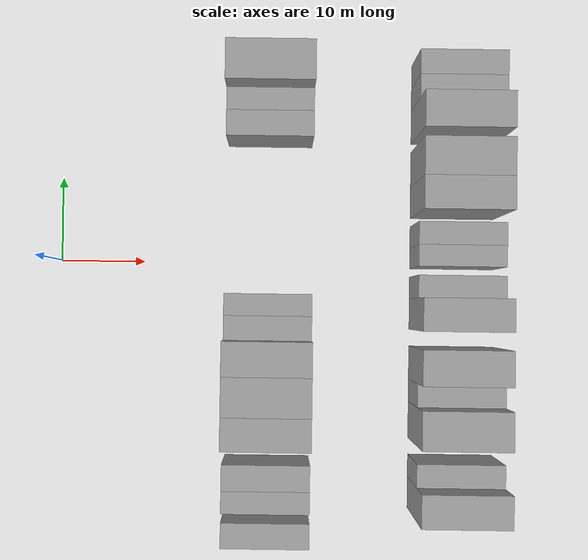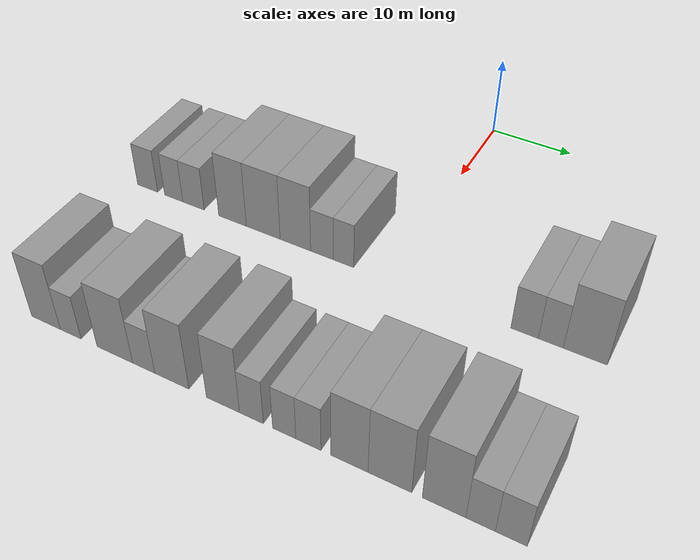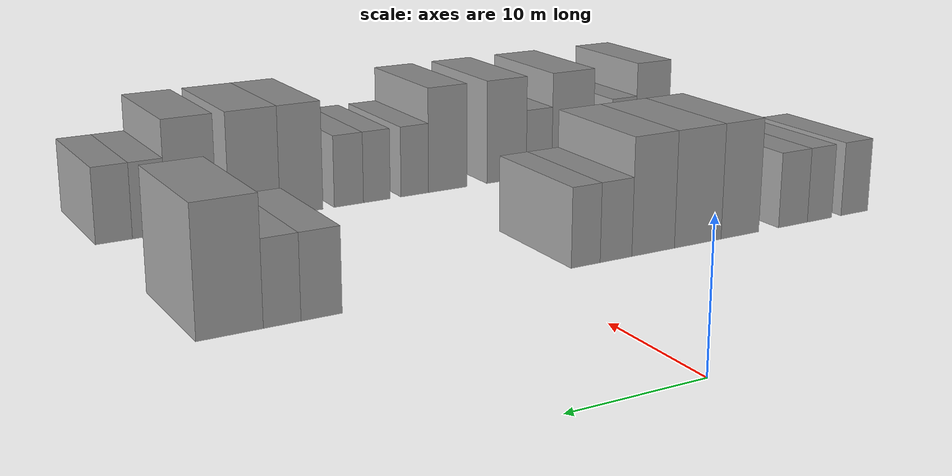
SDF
<sdf version="1.6">
 <world name="default">
  <model name="building_44">
   <static>1</static>
   <pose>25.0000 -31.0404 0 0.000000 0.000000 0.000000</pose>
   <link name="link">
    <pose>0 0 3.00 0 0 0</pose>
    <collision name="collision"><geometry><box><size>10.0000 2.8728 6.0000</size></box></geometry></collision>
    <visual name="visual">
     <cast_shadows>0</cast_shadows>
     <geometry><box><size>10.0000 2.8728 6.0000</size></box></geometry>
     <material>
      <script>
       <uri>model://grey_wall/materials/scripts</uri>
       <uri>model://grey_wall/materials/textures</uri>
       <name>vrc/grey_wall</name>
      </script>
     </material>
    </visual>
   </link>
  </model>
  <model name="building_45">
   <static>1</static>
   <pose>25.0000 -27.3285 0 0.000000 0.000000 0.000000</pose>
   <link name="link">
    <pose>0 0 3.00 0 0 0</pose>
    <collision name="collision"><geometry><box><size>10.0000 2.5510 6.0000</size></box></geometry></collision>
    <visual name="visual">
     <cast_shadows>0</cast_shadows>
     <geometry><box><size>10.0000 2.5510 6.0000</size></box></geometry>
     <material>
      <script>
       <uri>model://grey_wall/materials/scripts</uri>
       <uri>model://grey_wall/materials/textures</uri>
       <name>vrc/grey_wall</name>
      </script>
     </material>
    </visual>
   </link>
  </model>
  <model name="building_46">
   <static>1</static>
   <pose>25.0000 -24.5753 0 0.000000 0.000000 0.000000</pose>
   <link name="link">
    <pose>0 0 3.00 0 0 0</pose>
    <collision name="collision"><geometry><box><size>10.0000 2.9554 6.0000</size></box></geometry></collision>
    <visual name="visual">
     <cast_shadows>0</cast_shadows>
     <geometry><box><size>10.0000 2.9554 6.0000</size></box></geometry>
     <material>
      <script>
       <uri>model://grey_wall/materials/scripts</uri>
       <uri>model://grey_wall/materials/textures</uri>
       <name>vrc/grey_wall</name>
      </script>
     </material>
    </visual>
   </link>
  </model>
  <model name="building_47">
   <static>1</static>
   <pose>25.0000 -19.2505 0 0.000000 0.000000 0.000000</pose>
   <link name="link">
    <pose>0 0 4.50 0 0 0</pose>
    <collision name="collision"><geometry><box><size>10.0000 3.6943 9.0000</size></box></geometry></collision>
    <visual name="visual">
     <cast_shadows>0</cast_shadows>
     <geometry><box><size>10.0000 3.6943 9.0000</size></box></geometry>
     <material>
      <script>
       <uri>model://grey_wall/materials/scripts</uri>
       <uri>model://grey_wall/materials/textures</uri>
       <name>vrc/grey_wall</name>
      </script>
     </material>
    </visual>
   </link>
  </model>
  <model name="building_48">
   <static>1</static>
   <pose>25.0000 -15.1972 0 0.000000 0.000000 0.000000</pose>
   <link name="link">
    <pose>0 0 4.50 0 0 0</pose>
    <collision name="collision"><geometry><box><size>10.0000 4.4121 9.0000</size></box></geometry></collision>
    <visual name="visual">
     <cast_shadows>0</cast_shadows>
     <geometry><box><size>10.0000 4.4121 9.0000</size></box></geometry>
     <material>
      <script>
       <uri>model://grey_wall/materials/scripts</uri>
       <uri>model://grey_wall/materials/textures</uri>
       <name>vrc/grey_wall</name>
      </script>
     </material>
    </visual>
   </link>
  </model>
  <model name="building_49">
   <static>1</static>
   <pose>25.0000 -11.0496 0 0.000000 0.000000 0.000000</pose>
   <link name="link">
    <pose>0 0 4.50 0 0 0</pose>
    <collision name="collision"><geometry><box><size>10.0000 3.8831 9.0000</size></box></geometry></collision>
    <visual name="visual">
     <cast_shadows>0</cast_shadows>
     <geometry><box><size>10.0000 3.8831 9.0000</size></box></geometry>
     <material>
      <script>
       <uri>model://grey_wall/materials/scripts</uri>
       <uri>model://grey_wall/materials/textures</uri>
       <name>vrc/grey_wall</name>
      </script>
     </material>
    </visual>
   </link>
  </model>
  <model name="building_50">
   <static>1</static>
   <pose>25.0000 -7.7061 0 0.000000 0.000000 0.000000</pose>
   <link name="link">
    <pose>0 0 3.00 0 0 0</pose>
    <collision name="collision"><geometry><box><size>10.0000 2.8038 6.0000</size></box></geometry></collision>
    <visual name="visual">
     <cast_shadows>0</cast_shadows>
     <geometry><box><size>10.0000 2.8038 6.0000</size></box></geometry>
     <material>
      <script>
       <uri>model://grey_wall/materials/scripts</uri>
       <uri>model://grey_wall/materials/textures</uri>
       <name>vrc/grey_wall</name>
      </script>
     </material>
    </visual>
   </link>
  </model>
  <model name="building_51">
   <static>1</static>
   <pose>25.0000 -5.0564 0 0.000000 0.000000 0.000000</pose>
   <link name="link">
    <pose>0 0 3.00 0 0 0</pose>
    <collision name="collision"><geometry><box><size>10.0000 2.4957 6.0000</size></box></geometry></collision>
    <visual name="visual">
     <cast_shadows>0</cast_shadows>
     <geometry><box><size>10.0000 2.4957 6.0000</size></box></geometry>
     <material>
      <script>
       <uri>model://grey_wall/materials/scripts</uri>
       <uri>model://grey_wall/materials/textures</uri>
       <name>vrc/grey_wall</name>
      </script>
     </material>
    </visual>
   </link>
  </model>
  <model name="building_52">
   <static>1</static>
   <pose>25.0000 15.5653 0 0.000000 0.000000 0.000000</pose>
   <link name="link">
    <pose>0 0 3.00 0 0 0</pose>
    <collision name="collision"><geometry><box><size>10.0000 2.9159 6.0000</size></box></geometry></collision>
    <visual name="visual">
     <cast_shadows>0</cast_shadows>
     <geometry><box><size>10.0000 2.9159 6.0000</size></box></geometry>
     <material>
      <script>
       <uri>model://grey_wall/materials/scripts</uri>
       <uri>model://grey_wall/materials/textures</uri>
       <name>vrc/grey_wall</name>
      </script>
     </material>
    </visual>
   </link>
  </model>
  <model name="building_53">
   <static>1</static>
   <pose>25.0000 18.3170 0 0.000000 0.000000 0.000000</pose>
   <link name="link">
    <pose>0 0 3.00 0 0 0</pose>
    <collision name="collision"><geometry><box><size>10.0000 2.5877 6.0000</size></box></geometry></collision>
    <visual name="visual">
     <cast_shadows>0</cast_shadows>
     <geometry><box><size>10.0000 2.5877 6.0000</size></box></geometry>
     <material>
      <script>
       <uri>model://grey_wall/materials/scripts</uri>
       <uri>model://grey_wall/materials/textures</uri>
       <name>vrc/grey_wall</name>
      </script>
     </material>
    </visual>
   </link>
  </model>
  <model name="building_54">
   <static>1</static>
   <pose>25.0000 21.8488 0 0.000000 0.000000 0.000000</pose>
   <link name="link">
    <pose>0 0 4.50 0 0 0</pose>
    <collision name="collision"><geometry><box><size>10.0000 4.4759 9.0000</size></box></geometry></collision>
    <visual name="visual">
     <cast_shadows>0</cast_shadows>
     <geometry><box><size>10.0000 4.4759 9.0000</size></box></geometry>
     <material>
      <script>
       <uri>model://grey_wall/materials/scripts</uri>
       <uri>model://grey_wall/materials/textures</uri>
       <name>vrc/grey_wall</name>
      </script>
     </material>
    </visual>
   </link>
  </model>
  <model name="building_131">
   <static>1</static>
   <pose>47.0000 -27.2672 0 0.000000 0.000000 0.000000</pose>
   <link name="link">
    <pose>0 0 4.50 0 0 0</pose>
    <collision name="collision"><geometry><box><size>10.0000 3.7306 9.0000</size></box></geometry></collision>
    <visual name="visual">
     <cast_shadows>0</cast_shadows>
     <geometry><box><size>10.0000 3.7306 9.0000</size></box></geometry>
     <material>
      <script>
       <uri>model://grey_wall/materials/scripts</uri>
       <uri>model://grey_wall/materials/textures</uri>
       <name>vrc/grey_wall</name>
      </script>
     </material>
    </visual>
   </link>
  </model>
  <model name="building_132">
   <static>1</static>
   <pose>47.0000 -24.0720 0 0.000000 0.000000 0.000000</pose>
   <link name="link">
    <pose>0 0 3.00 0 0 0</pose>
    <collision name="collision"><geometry><box><size>10.0000 2.6598 6.0000</size></box></geometry></collision>
    <visual name="visual">
     <cast_shadows>0</cast_shadows>
     <geometry><box><size>10.0000 2.6598 6.0000</size></box></geometry>
     <material>
      <script>
       <uri>model://grey_wall/materials/scripts</uri>
       <uri>model://grey_wall/materials/textures</uri>
       <name>vrc/grey_wall</name>
      </script>
     </material>
    </visual>
   </link>
  </model>
  <model name="building_133">
   <static>1</static>
   <pose>47.0000 -18.5558 0 0.000000 0.000000 0.000000</pose>
   <link name="link">
    <pose>0 0 4.50 0 0 0</pose>
    <collision name="collision"><geometry><box><size>10.0000 4.3724 9.0000</size></box></geometry></collision>
    <visual name="visual">
     <cast_shadows>0</cast_shadows>
     <geometry><box><size>10.0000 4.3724 9.0000</size></box></geometry>
     <material>
      <script>
       <uri>model://grey_wall/materials/scripts</uri>
       <uri>model://grey_wall/materials/textures</uri>
       <name>vrc/grey_wall</name>
      </script>
     </material>
    </visual>
   </link>
  </model>
  <model name="building_134">
   <static>1</static>
   <pose>47.0000 -15.0425 0 0.000000 0.000000 0.000000</pose>
   <link name="link">
    <pose>0 0 3.00 0 0 0</pose>
    <collision name="collision"><geometry><box><size>10.0000 2.6542 6.0000</size></box></geometry></collision>
    <visual name="visual">
     <cast_shadows>0</cast_shadows>
     <geometry><box><size>10.0000 2.6542 6.0000</size></box></geometry>
     <material>
      <script>
       <uri>model://grey_wall/materials/scripts</uri>
       <uri>model://grey_wall/materials/textures</uri>
       <name>vrc/grey_wall</name>
      </script>
     </material>
    </visual>
   </link>
  </model>
  <model name="building_135">
   <static>1</static>
   <pose>47.0000 -11.7225 0 0.000000 0.000000 0.000000</pose>
   <link name="link">
    <pose>0 0 4.50 0 0 0</pose>
    <collision name="collision"><geometry><box><size>10.0000 3.9857 9.0000</size></box></geometry></collision>
    <visual name="visual">
     <cast_shadows>0</cast_shadows>
     <geometry><box><size>10.0000 3.9857 9.0000</size></box></geometry>
     <material>
      <script>
       <uri>model://grey_wall/materials/scripts</uri>
       <uri>model://grey_wall/materials/textures</uri>
       <name>vrc/grey_wall</name>
      </script>
     </material>
    </visual>
   </link>
  </model>
  <model name="building_136">
   <static>1</static>
   <pose>47.0000 -5.8802 0 0.000000 0.000000 0.000000</pose>
   <link name="link">
    <pose>0 0 4.50 0 0 0</pose>
    <collision name="collision"><geometry><box><size>10.0000 3.6989 9.0000</size></box></geometry></collision>
    <visual name="visual">
     <cast_shadows>0</cast_shadows>
     <geometry><box><size>10.0000 3.6989 9.0000</size></box></geometry>
     <material>
      <script>
       <uri>model://grey_wall/materials/scripts</uri>
       <uri>model://grey_wall/materials/textures</uri>
       <name>vrc/grey_wall</name>
      </script>
     </material>
    </visual>
   </link>
  </model>
  <model name="building_137">
   <static>1</static>
   <pose>47.0000 -2.7296 0 0.000000 0.000000 0.000000</pose>
   <link name="link">
    <pose>0 0 3.00 0 0 0</pose>
    <collision name="collision"><geometry><box><size>10.0000 2.6023 6.0000</size></box></geometry></collision>
    <visual name="visual">
     <cast_shadows>0</cast_shadows>
     <geometry><box><size>10.0000 2.6023 6.0000</size></box></geometry>
     <material>
      <script>
       <uri>model://grey_wall/materials/scripts</uri>
       <uri>model://grey_wall/materials/textures</uri>
       <name>vrc/grey_wall</name>
      </script>
     </material>
    </visual>
   </link>
  </model>
  <model name="building_138">
   <static>1</static>
   <pose>47.0000 0.8027 0 0.000000 0.000000 0.000000</pose>
   <link name="link">
    <pose>0 0 3.00 0 0 0</pose>
    <collision name="collision"><geometry><box><size>10.0000 2.4622 6.0000</size></box></geometry></collision>
    <visual name="visual">
     <cast_shadows>0</cast_shadows>
     <geometry><box><size>10.0000 2.4622 6.0000</size></box></geometry>
     <material>
      <script>
       <uri>model://grey_wall/materials/scripts</uri>
       <uri>model://grey_wall/materials/textures</uri>
       <name>vrc/grey_wall</name>
      </script>
     </material>
    </visual>
   </link>
  </model>
  <model name="building_139">
   <static>1</static>
   <pose>47.0000 3.3462 0 0.000000 0.000000 0.000000</pose>
   <link name="link">
    <pose>0 0 3.00 0 0 0</pose>
    <collision name="collision"><geometry><box><size>10.0000 2.6249 6.0000</size></box></geometry></collision>
    <visual name="visual">
     <cast_shadows>0</cast_shadows>
     <geometry><box><size>10.0000 2.6249 6.0000</size></box></geometry>
     <material>
      <script>
       <uri>model://grey_wall/materials/scripts</uri>
       <uri>model://grey_wall/materials/textures</uri>
       <name>vrc/grey_wall</name>
      </script>
     </material>
    </visual>
   </link>
  </model>
  <model name="building_140">
   <static>1</static>
   <pose>47.0000 7.5264 0 0.000000 0.000000 0.000000</pose>
   <link name="link">
    <pose>0 0 4.50 0 0 0</pose>
    <collision name="collision"><geometry><box><size>10.0000 3.7354 9.0000</size></box></geometry></collision>
    <visual name="visual">
     <cast_shadows>0</cast_shadows>
     <geometry><box><size>10.0000 3.7354 9.0000</size></box></geometry>
     <material>
      <script>
       <uri>model://grey_wall/materials/scripts</uri>
       <uri>model://grey_wall/materials/textures</uri>
       <name>vrc/grey_wall</name>
      </script>
     </material>
    </visual>
   </link>
  </model>
  <model name="building_141">
   <static>1</static>
   <pose>47.0000 11.5310 0 0.000000 0.000000 0.000000</pose>
   <link name="link">
    <pose>0 0 4.50 0 0 0</pose>
    <collision name="collision"><geometry><box><size>10.0000 4.2737 9.0000</size></box></geometry></collision>
    <visual name="visual">
     <cast_shadows>0</cast_shadows>
     <geometry><box><size>10.0000 4.2737 9.0000</size></box></geometry>
     <material>
      <script>
       <uri>model://grey_wall/materials/scripts</uri>
       <uri>model://grey_wall/materials/textures</uri>
       <name>vrc/grey_wall</name>
      </script>
     </material>
    </visual>
   </link>
  </model>
  <model name="building_142">
   <static>1</static>
   <pose>47.0000 16.7043 0 0.000000 0.000000 0.000000</pose>
   <link name="link">
    <pose>0 0 4.50 0 0 0</pose>
    <collision name="collision"><geometry><box><size>10.0000 4.0728 9.0000</size></box></geometry></collision>
    <visual name="visual">
     <cast_shadows>0</cast_shadows>
     <geometry><box><size>10.0000 4.0728 9.0000</size></box></geometry>
     <material>
      <script>
       <uri>model://grey_wall/materials/scripts</uri>
       <uri>model://grey_wall/materials/textures</uri>
       <name>vrc/grey_wall</name>
      </script>
     </material>
    </visual>
   </link>
  </model>
  <model name="building_143">
   <static>1</static>
   <pose>47.0000 20.0762 0 0.000000 0.000000 0.000000</pose>
   <link name="link">
    <pose>0 0 3.00 0 0 0</pose>
    <collision name="collision"><geometry><box><size>10.0000 2.6710 6.0000</size></box></geometry></collision>
    <visual name="visual">
     <cast_shadows>0</cast_shadows>
     <geometry><box><size>10.0000 2.6710 6.0000</size></box></geometry>
     <material>
      <script>
       <uri>model://grey_wall/materials/scripts</uri>
       <uri>model://grey_wall/materials/textures</uri>
       <name>vrc/grey_wall</name>
      </script>
     </material>
    </visual>
   </link>
  </model>
  <model name="building_144">
   <static>1</static>
   <pose>47.0000 22.8278 0 0.000000 0.000000 0.000000</pose>
   <link name="link">
    <pose>0 0 3.00 0 0 0</pose>
    <collision name="collision"><geometry><box><size>10.0000 2.8322 6.0000</size></box></geometry></collision>
    <visual name="visual">
     <cast_shadows>0</cast_shadows>
     <geometry><box><size>10.0000 2.8322 6.0000</size></box></geometry>
     <material>
      <script>
       <uri>model://grey_wall/materials/scripts</uri>
       <uri>model://grey_wall/materials/textures</uri>
       <name>vrc/grey_wall</name>
      </script>
     </material>
    </visual>
   </link>
  </model>
 </world>
</sdf>
